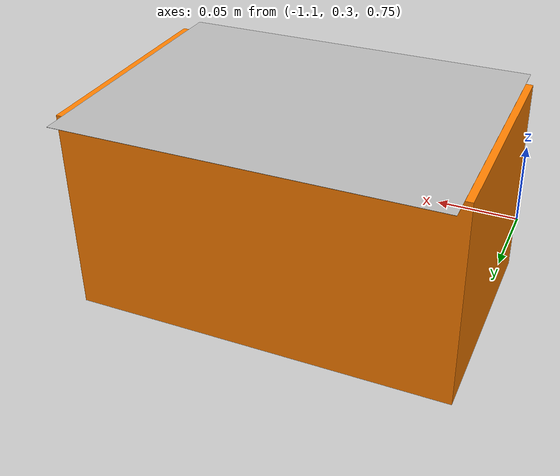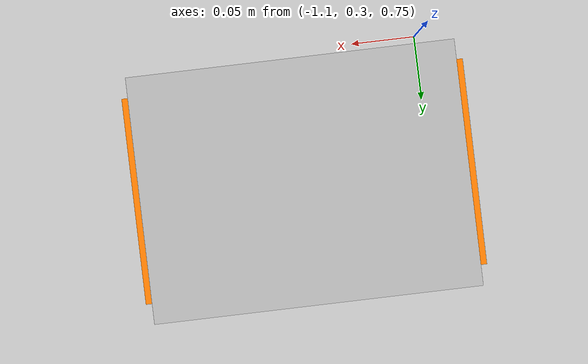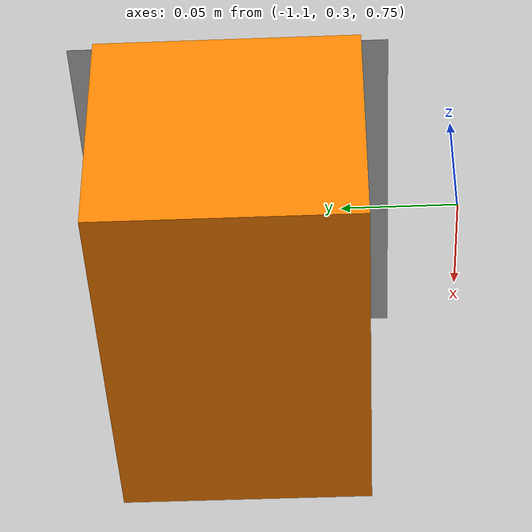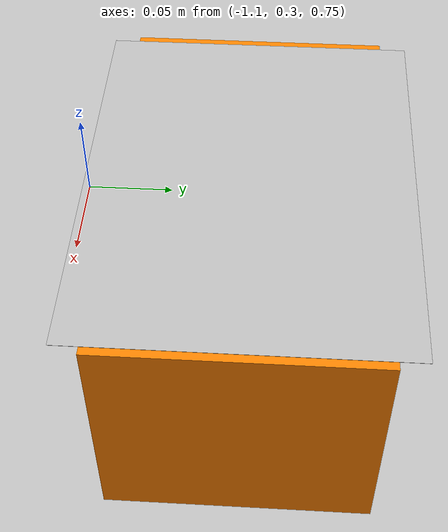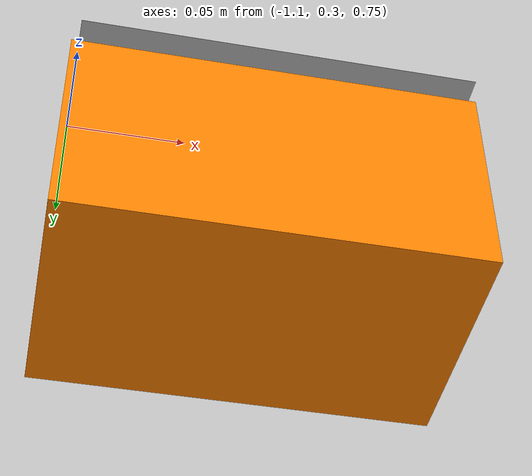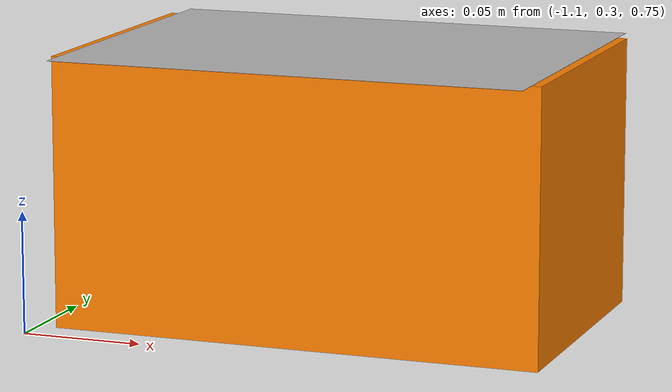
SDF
<?xml version="1.0" ?>
<sdf version="1.6">
  <model name="5934027885625">
    <static>false</static>  <!-- Ensure the model is dynamic -->

    <link name="box_link">
      <!-- Inertial properties -->
      <inertial>
        <mass>0.0843</mass>
        <inertia>
          <ixx>0.000020352</ixx>
          <ixy>0</ixy>
          <ixz>0</ixz>
          <iyy>0.000031373</iyy>
          <iyz>0</iyz>
          <izz>0.000036967</izz>
        </inertia>
      </inertial>

      <!-- Collision Properties -->
      <collision name="box_collision">
        <pose>0 0 0 0 0 0</pose>  <!-- Aligned with the box -->
        <geometry>
          <box>
            <size>0.229751 0.162283 0.113616</size>  <!-- Same size as the box -->
          </box>
        </geometry>
        <surface>
          <friction>
            <ode>
              <mu>1.0</mu>
              <mu2>1.0</mu2>
            </ode>
          </friction>
          <contact>
            <ode>
              <soft_cfm>0.0</soft_cfm>
              <soft_erp>0.2</soft_erp>
            </ode>
          </contact>
        </surface>
      </collision>

      <!-- Visual for the Box -->
      <visual name="box_visual">
        <pose>0 0 0 0 0 0</pose>  <!-- Align with collision -->
        <geometry>
          <box>
            <size>0.20750000000000002 0.125 0.113616</size>
          </box>
        </geometry>
        <material>
          <ambient>1 0.5 0 1</ambient>  <!-- Orange color -->
          <diffuse>1 0.5 0 1</diffuse>
        </material>
      </visual>

      <!-- Barcode Visual (Slightly Above Top Face to Avoid Interference) -->
      <visual name="barcode_visual">
        <pose>0 0 0.057 0 0 0</pose>  <!-- Slightly offset to avoid z-fighting -->
        <geometry>
          <plane>
            <size>0.2 0.15</size>  <!-- Adjust size to fit box top -->
          </plane>
        </geometry>
        <material>
          <script>
            <uri>model://5934027885625/materials/scripts</uri>
            <uri>model://5934027885625/materials/textures</uri>
            <name>5934027885625</name>
          </script>
        </material>
      </visual>

      <!-- Physics Settings -->
      <gravity>1</gravity>
      <self_collide>false</self_collide>  <!-- No self-collision -->
      <kinematic>false</kinematic>  <!-- Make the object dynamic -->
      <enable_wind>false</enable_wind>
    </link>

    <!-- Model Configuration -->
    <pose>-1.0 0.4 0.8 0 0 3.14</pose>  <!-- Initial spawn location -->
    <allow_auto_disable>false</allow_auto_disable>  <!-- Keep physics active -->
  </model>
</sdf>
